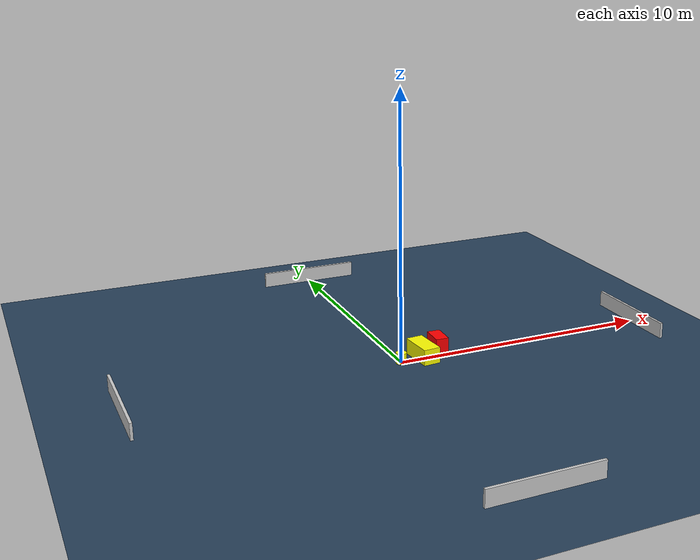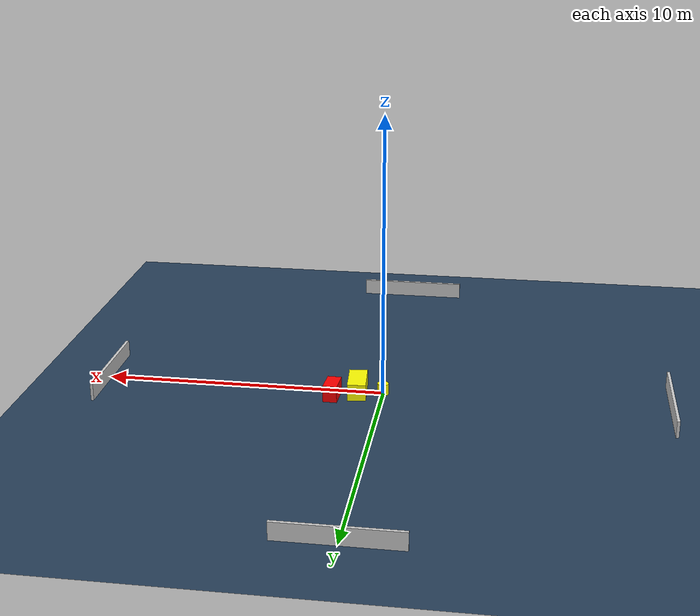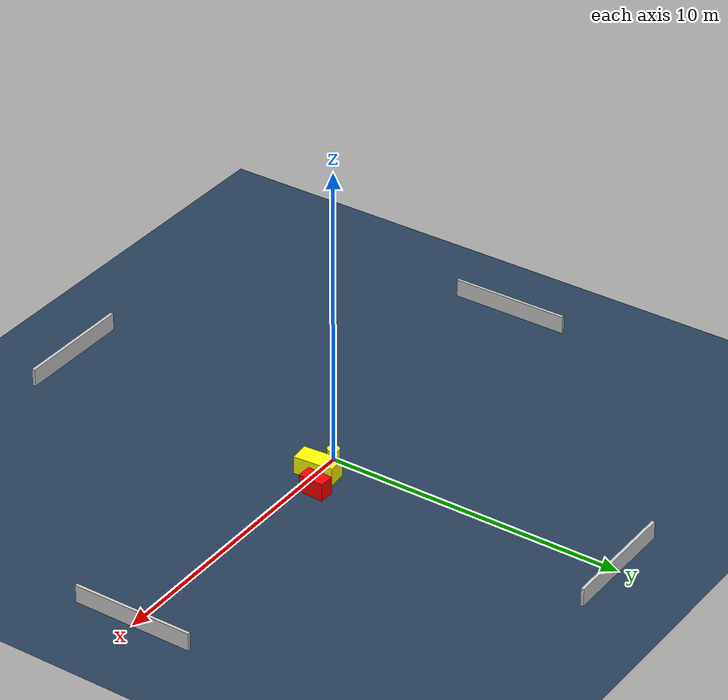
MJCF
<?xml version="1.0" ?>
<mujoco model="generated_environment">
  <option timestep="0.01" integrator="RK4" cone="elliptic"/>
  <default>
    <geom density="1"/>
  </default>
  <asset>
    <texture builtin="gradient" height="3072" name="skybox" rgb1="0.3 0.5 0.7" rgb2="0 0 0" type="skybox" width="512"/>
    <texture builtin="checker" height="300" name="groundplane" rgb1="0.2 0.3 0.4" rgb2="0.1 0.2 0.3" type="2d" width="300"/>
    <material name="groundplane" reflectance="0.2" texrepeat="5 5" texture="groundplane"/>
  </asset>
  <worldbody>
    <light dir="0 0 -1" directional="true" pos="0 0 1.5"/>
    <geom condim="3" friction="0.5 0.005 0.001" material="groundplane" name="floor" pos="0 0 0" size="0 0 0.05" type="plane"/>
    <body name="walls">
      <geom name="wall_1" condim="4" pos="-10.0 0.0 0.3" rgba="0.800000011920929 0.800000011920929 0.800000011920929 1.0" size="0.05 2.0 0.3" type="box"/>
      <geom name="wall_2" condim="4" pos="10.0 0.0 0.3" rgba="0.800000011920929 0.800000011920929 0.800000011920929 1.0" size="0.05 2.0 0.3" type="box"/>
      <geom name="wall_3" condim="4" pos="0.0 -10.0 0.3" rgba="0.800000011920929 0.800000011920929 0.800000011920929 1.0" size="2.0 0.05 0.3" type="box"/>
      <geom name="wall_4" condim="4" pos="0.0 10.0 0.3" rgba="0.800000011920929 0.800000011920929 0.800000011920929 1.0" size="2.0 0.05 0.3" type="box"/>
    </body>
    <body name="robot">
      <joint name="joint_x" type="slide" pos="0 0 0" axis="1 0 0"/>
      <joint name="joint_y" type="slide" pos="0 0 0" axis="0 1 0"/>
      <geom name="robot" type="cylinder" pos="0.0 0.0 0.2" size="0.2 0.2 0.0" mass="5.0" friction="1.0 0.005 0.0001" condim="4" rgba="1.0 1.0 0.0 1.0"/>
    </body>
    <body name="obstacle_1_movable">
      <geom name="obstacle_1_movable" condim="4" pos="0.9043593790932449 0.06301314187922194 0.3" euler="0 0 184.6555760595519" friction="0.0 0.005 0.001" rgba="1.0 1.0 0.0 1.0" size="0.3237214025225366 0.6652035847956315 0.3" type="box" mass="0.1"/>
      <joint type="free"/>
    </body>
    <body name="obstacle_2_static">
      <geom name="obstacle_2_static" condim="4" pos="1.7341573082319353 0.5397398837169401 0.3" euler="0 0 267.35083626326747" friction="0.0 0.005 0.001" rgba="1.0 0.0 0.0 1.0" size="0.43298923154015095 0.24569121826795637 0.3" type="box"/>
    </body>
  </worldbody>
  <actuator>
    <motor name="actuator_x" joint="joint_x" gear="1" ctrlrange="-1 1"/>
    <motor name="actuator_y" joint="joint_y" gear="1" ctrlrange="-1 1"/>
  </actuator>
</mujoco>
